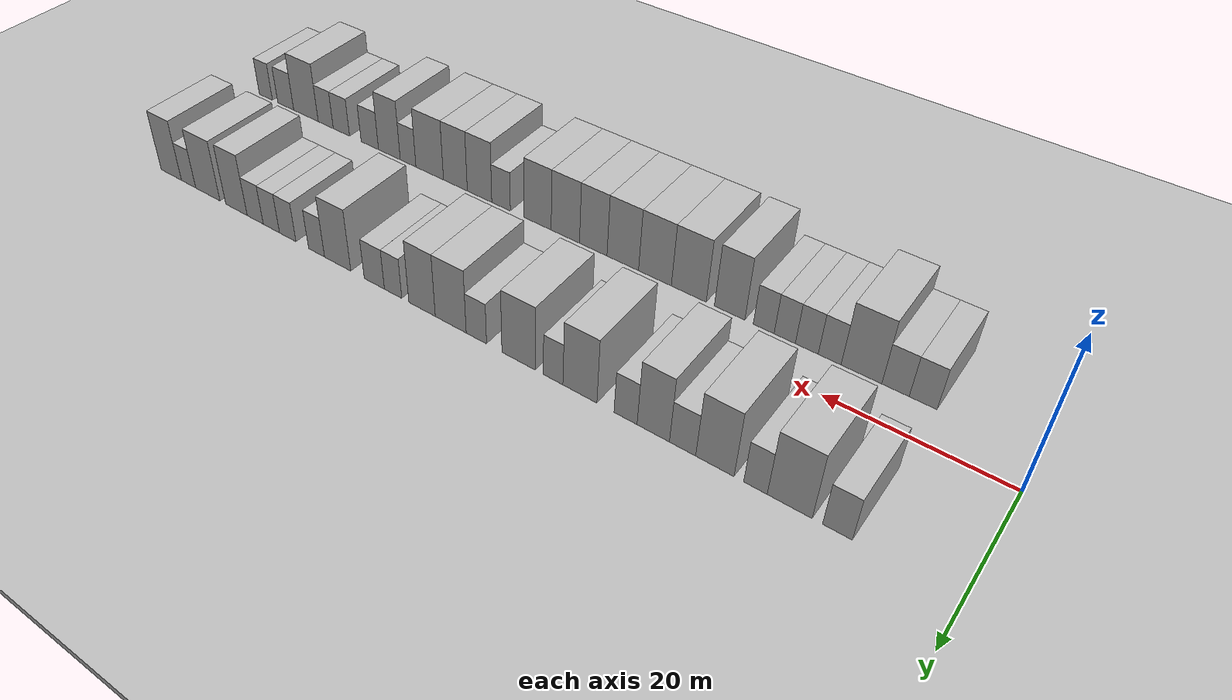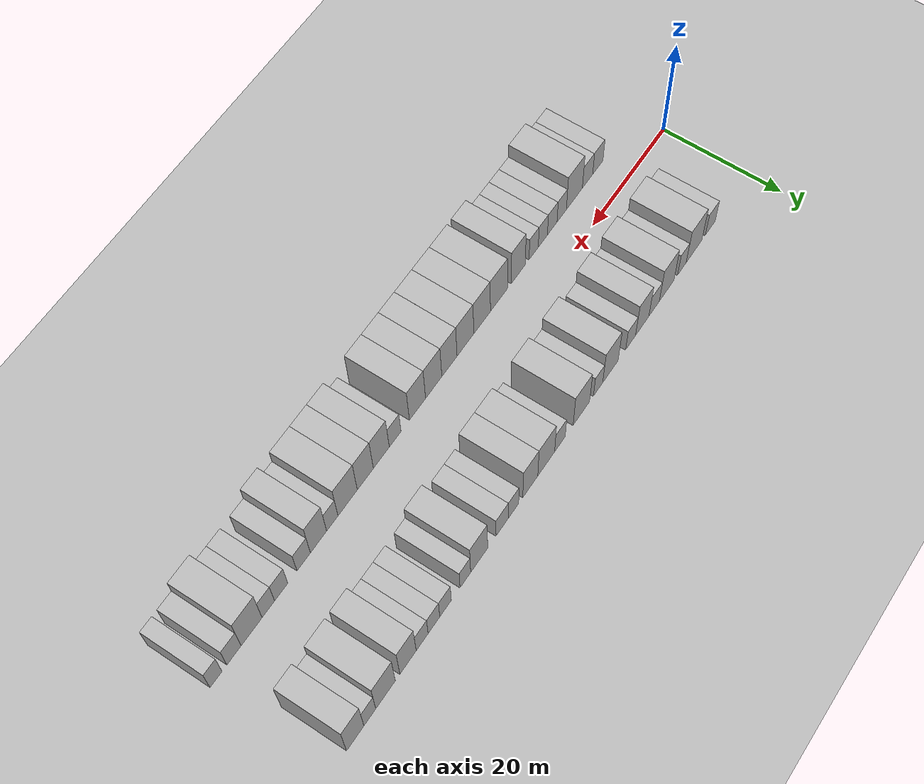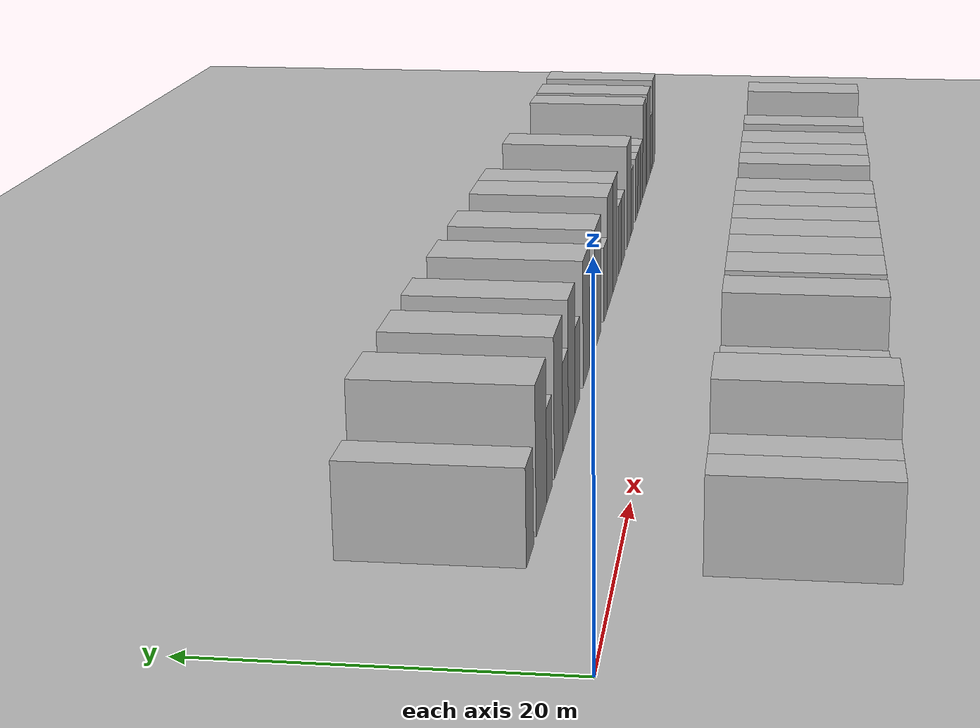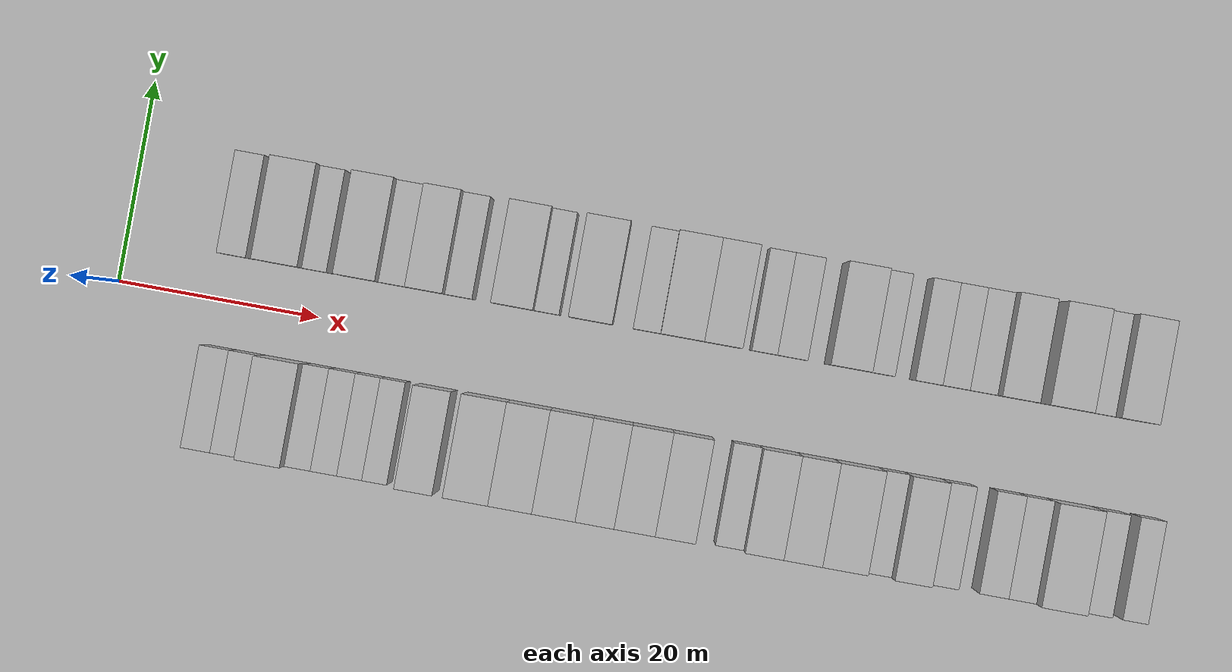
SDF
<sdf version="1.6">
 <world name="default">
  <include><name>ground_plane_1</name><uri>model://HANNAS_ground_plane</uri></include>
  <include>
   <name>ground_plane_2</name>
   <uri>model://HANNAS_ground_plane</uri>
   <pose>100 0 0  0 0 0</pose>
  </include>
  <model name="building_1">
   <static>1</static>
   <pose>11.4243 9.5000 0 0.000000 0.000000 1.570796</pose>
   <link name="link">
    <pose>0 0 3.00 0 0 0</pose>
    <collision name="collision"><geometry><box><size>10.0000 2.8487 6.0000</size></box></geometry></collision>
    <visual name="visual">
     <cast_shadows>0</cast_shadows>
     <geometry><box><size>10.0000 2.8487 6.0000</size></box></geometry>
     <material>
      <script>
       <uri>model://HANNAS_wall/materials/scripts</uri>
       <uri>model://HANNAS_wall/materials/textures</uri>
       <name>vrc/HANNAS_wall</name>
      </script>
     </material>
    </visual>
   </link>
  </model>
  <model name="building_2">
   <static>1</static>
   <pose>16.0821 9.5000 0 0.000000 0.000000 1.570796</pose>
   <link name="link">
    <pose>0 0 4.50 0 0 0</pose>
    <collision name="collision"><geometry><box><size>10.0000 4.4667 9.0000</size></box></geometry></collision>
    <visual name="visual">
     <cast_shadows>0</cast_shadows>
     <geometry><box><size>10.0000 4.4667 9.0000</size></box></geometry>
     <material>
      <script>
       <uri>model://HANNAS_wall/materials/scripts</uri>
       <uri>model://HANNAS_wall/materials/textures</uri>
       <name>vrc/HANNAS_wall</name>
      </script>
     </material>
    </visual>
   </link>
  </model>
  <model name="building_3">
   <static>1</static>
   <pose>19.5172 9.5000 0 0.000000 0.000000 1.570796</pose>
   <link name="link">
    <pose>0 0 3.00 0 0 0</pose>
    <collision name="collision"><geometry><box><size>10.0000 2.4036 6.0000</size></box></geometry></collision>
    <visual name="visual">
     <cast_shadows>0</cast_shadows>
     <geometry><box><size>10.0000 2.4036 6.0000</size></box></geometry>
     <material>
      <script>
       <uri>model://HANNAS_wall/materials/scripts</uri>
       <uri>model://HANNAS_wall/materials/textures</uri>
       <name>vrc/HANNAS_wall</name>
      </script>
     </material>
    </visual>
   </link>
  </model>
  <model name="building_4">
   <static>1</static>
   <pose>23.7486 9.5000 0 0.000000 0.000000 1.570796</pose>
   <link name="link">
    <pose>0 0 4.50 0 0 0</pose>
    <collision name="collision"><geometry><box><size>10.0000 4.0592 9.0000</size></box></geometry></collision>
    <visual name="visual">
     <cast_shadows>0</cast_shadows>
     <geometry><box><size>10.0000 4.0592 9.0000</size></box></geometry>
     <material>
      <script>
       <uri>model://HANNAS_wall/materials/scripts</uri>
       <uri>model://HANNAS_wall/materials/textures</uri>
       <name>vrc/HANNAS_wall</name>
      </script>
     </material>
    </visual>
   </link>
  </model>
  <model name="building_5">
   <static>1</static>
   <pose>27.2113 9.5000 0 0.000000 0.000000 1.570796</pose>
   <link name="link">
    <pose>0 0 3.00 0 0 0</pose>
    <collision name="collision"><geometry><box><size>10.0000 2.8662 6.0000</size></box></geometry></collision>
    <visual name="visual">
     <cast_shadows>0</cast_shadows>
     <geometry><box><size>10.0000 2.8662 6.0000</size></box></geometry>
     <material>
      <script>
       <uri>model://HANNAS_wall/materials/scripts</uri>
       <uri>model://HANNAS_wall/materials/textures</uri>
       <name>vrc/HANNAS_wall</name>
      </script>
     </material>
    </visual>
   </link>
  </model>
  <model name="building_6">
   <static>1</static>
   <pose>30.4555 9.5000 0 0.000000 0.000000 1.570796</pose>
   <link name="link">
    <pose>0 0 4.50 0 0 0</pose>
    <collision name="collision"><geometry><box><size>10.0000 3.6220 9.0000</size></box></geometry></collision>
    <visual name="visual">
     <cast_shadows>0</cast_shadows>
     <geometry><box><size>10.0000 3.6220 9.0000</size></box></geometry>
     <material>
      <script>
       <uri>model://HANNAS_wall/materials/scripts</uri>
       <uri>model://HANNAS_wall/materials/textures</uri>
       <name>vrc/HANNAS_wall</name>
      </script>
     </material>
    </visual>
   </link>
  </model>
  <model name="building_7">
   <static>1</static>
   <pose>33.5878 9.5000 0 0.000000 0.000000 1.570796</pose>
   <link name="link">
    <pose>0 0 3.00 0 0 0</pose>
    <collision name="collision"><geometry><box><size>10.0000 2.6427 6.0000</size></box></geometry></collision>
    <visual name="visual">
     <cast_shadows>0</cast_shadows>
     <geometry><box><size>10.0000 2.6427 6.0000</size></box></geometry>
     <material>
      <script>
       <uri>model://HANNAS_wall/materials/scripts</uri>
       <uri>model://HANNAS_wall/materials/textures</uri>
       <name>vrc/HANNAS_wall</name>
      </script>
     </material>
    </visual>
   </link>
  </model>
  <model name="building_8">
   <static>1</static>
   <pose>38.9452 9.5000 0 0.000000 0.000000 1.570796</pose>
   <link name="link">
    <pose>0 0 4.50 0 0 0</pose>
    <collision name="collision"><geometry><box><size>10.0000 4.0722 9.0000</size></box></geometry></collision>
    <visual name="visual">
     <cast_shadows>0</cast_shadows>
     <geometry><box><size>10.0000 4.0722 9.0000</size></box></geometry>
     <material>
      <script>
       <uri>model://HANNAS_wall/materials/scripts</uri>
       <uri>model://HANNAS_wall/materials/textures</uri>
       <name>vrc/HANNAS_wall</name>
      </script>
     </material>
    </visual>
   </link>
  </model>
  <model name="building_9">
   <static>1</static>
   <pose>42.1849 9.5000 0 0.000000 0.000000 1.570796</pose>
   <link name="link">
    <pose>0 0 3.00 0 0 0</pose>
    <collision name="collision"><geometry><box><size>10.0000 2.4071 6.0000</size></box></geometry></collision>
    <visual name="visual">
     <cast_shadows>0</cast_shadows>
     <geometry><box><size>10.0000 2.4071 6.0000</size></box></geometry>
     <material>
      <script>
       <uri>model://HANNAS_wall/materials/scripts</uri>
       <uri>model://HANNAS_wall/materials/textures</uri>
       <name>vrc/HANNAS_wall</name>
      </script>
     </material>
    </visual>
   </link>
  </model>
  <model name="building_10">
   <static>1</static>
   <pose>46.5033 9.5000 0 0.000000 0.000000 1.570796</pose>
   <link name="link">
    <pose>0 0 4.50 0 0 0</pose>
    <collision name="collision"><geometry><box><size>10.0000 4.2298 9.0000</size></box></geometry></collision>
    <visual name="visual">
     <cast_shadows>0</cast_shadows>
     <geometry><box><size>10.0000 4.2298 9.0000</size></box></geometry>
     <material>
      <script>
       <uri>model://HANNAS_wall/materials/scripts</uri>
       <uri>model://HANNAS_wall/materials/textures</uri>
       <name>vrc/HANNAS_wall</name>
      </script>
     </material>
    </visual>
   </link>
  </model>
  <model name="building_11">
   <static>1</static>
   <pose>51.9629 9.5000 0 0.000000 0.000000 1.570796</pose>
   <link name="link">
    <pose>0 0 3.00 0 0 0</pose>
    <collision name="collision"><geometry><box><size>10.0000 2.6895 6.0000</size></box></geometry></collision>
    <visual name="visual">
     <cast_shadows>0</cast_shadows>
     <geometry><box><size>10.0000 2.6895 6.0000</size></box></geometry>
     <material>
      <script>
       <uri>model://HANNAS_wall/materials/scripts</uri>
       <uri>model://HANNAS_wall/materials/textures</uri>
       <name>vrc/HANNAS_wall</name>
      </script>
     </material>
    </visual>
   </link>
  </model>
  <model name="building_12">
   <static>1</static>
   <pose>55.4036 9.5000 0 0.000000 0.000000 1.570796</pose>
   <link name="link">
    <pose>0 0 4.50 0 0 0</pose>
    <collision name="collision"><geometry><box><size>10.0000 4.1919 9.0000</size></box></geometry></collision>
    <visual name="visual">
     <cast_shadows>0</cast_shadows>
     <geometry><box><size>10.0000 4.1919 9.0000</size></box></geometry>
     <material>
      <script>
       <uri>model://HANNAS_wall/materials/scripts</uri>
       <uri>model://HANNAS_wall/materials/textures</uri>
       <name>vrc/HANNAS_wall</name>
      </script>
     </material>
    </visual>
   </link>
  </model>
  <model name="building_13">
   <static>1</static>
   <pose>59.3472 9.5000 0 0.000000 0.000000 1.570796</pose>
   <link name="link">
    <pose>0 0 4.50 0 0 0</pose>
    <collision name="collision"><geometry><box><size>10.0000 3.6953 9.0000</size></box></geometry></collision>
    <visual name="visual">
     <cast_shadows>0</cast_shadows>
     <geometry><box><size>10.0000 3.6953 9.0000</size></box></geometry>
     <material>
      <script>
       <uri>model://HANNAS_wall/materials/scripts</uri>
       <uri>model://HANNAS_wall/materials/textures</uri>
       <name>vrc/HANNAS_wall</name>
      </script>
     </material>
    </visual>
   </link>
  </model>
  <model name="building_14">
   <static>1</static>
   <pose>63.4480 9.5000 0 0.000000 0.000000 1.570796</pose>
   <link name="link">
    <pose>0 0 3.00 0 0 0</pose>
    <collision name="collision"><geometry><box><size>10.0000 2.5064 6.0000</size></box></geometry></collision>
    <visual name="visual">
     <cast_shadows>0</cast_shadows>
     <geometry><box><size>10.0000 2.5064 6.0000</size></box></geometry>
     <material>
      <script>
       <uri>model://HANNAS_wall/materials/scripts</uri>
       <uri>model://HANNAS_wall/materials/textures</uri>
       <name>vrc/HANNAS_wall</name>
      </script>
     </material>
    </visual>
   </link>
  </model>
  <model name="building_15">
   <static>1</static>
   <pose>66.1786 9.5000 0 0.000000 0.000000 1.570796</pose>
   <link name="link">
    <pose>0 0 3.00 0 0 0</pose>
    <collision name="collision"><geometry><box><size>10.0000 2.9547 6.0000</size></box></geometry></collision>
    <visual name="visual">
     <cast_shadows>0</cast_shadows>
     <geometry><box><size>10.0000 2.9547 6.0000</size></box></geometry>
     <material>
      <script>
       <uri>model://HANNAS_wall/materials/scripts</uri>
       <uri>model://HANNAS_wall/materials/textures</uri>
       <name>vrc/HANNAS_wall</name>
      </script>
     </material>
    </visual>
   </link>
  </model>
  <model name="building_16">
   <static>1</static>
   <pose>71.6611 9.5000 0 0.000000 0.000000 1.570796</pose>
   <link name="link">
    <pose>0 0 4.50 0 0 0</pose>
    <collision name="collision"><geometry><box><size>10.0000 4.0103 9.0000</size></box></geometry></collision>
    <visual name="visual">
     <cast_shadows>0</cast_shadows>
     <geometry><box><size>10.0000 4.0103 9.0000</size></box></geometry>
     <material>
      <script>
       <uri>model://HANNAS_wall/materials/scripts</uri>
       <uri>model://HANNAS_wall/materials/textures</uri>
       <name>vrc/HANNAS_wall</name>
      </script>
     </material>
    </visual>
   </link>
  </model>
  <model name="building_17">
   <static>1</static>
   <pose>74.9075 9.5000 0 0.000000 0.000000 1.570796</pose>
   <link name="link">
    <pose>0 0 3.00 0 0 0</pose>
    <collision name="collision"><geometry><box><size>10.0000 2.4826 6.0000</size></box></geometry></collision>
    <visual name="visual">
     <cast_shadows>0</cast_shadows>
     <geometry><box><size>10.0000 2.4826 6.0000</size></box></geometry>
     <material>
      <script>
       <uri>model://HANNAS_wall/materials/scripts</uri>
       <uri>model://HANNAS_wall/materials/textures</uri>
       <name>vrc/HANNAS_wall</name>
      </script>
     </material>
    </visual>
   </link>
  </model>
  <model name="building_18">
   <static>1</static>
   <pose>79.4755 9.5000 0 0.000000 0.000000 1.570796</pose>
   <link name="link">
    <pose>0 0 3.00 0 0 0</pose>
    <collision name="collision"><geometry><box><size>10.0000 2.6533 6.0000</size></box></geometry></collision>
    <visual name="visual">
     <cast_shadows>0</cast_shadows>
     <geometry><box><size>10.0000 2.6533 6.0000</size></box></geometry>
     <material>
      <script>
       <uri>model://HANNAS_wall/materials/scripts</uri>
       <uri>model://HANNAS_wall/materials/textures</uri>
       <name>vrc/HANNAS_wall</name>
      </script>
     </material>
    </visual>
   </link>
  </model>
  <model name="building_19">
   <static>1</static>
   <pose>82.1273 9.5000 0 0.000000 0.000000 1.570796</pose>
   <link name="link">
    <pose>0 0 3.00 0 0 0</pose>
    <collision name="collision"><geometry><box><size>10.0000 2.6502 6.0000</size></box></geometry></collision>
    <visual name="visual">
     <cast_shadows>0</cast_shadows>
     <geometry><box><size>10.0000 2.6502 6.0000</size></box></geometry>
     <material>
      <script>
       <uri>model://HANNAS_wall/materials/scripts</uri>
       <uri>model://HANNAS_wall/materials/textures</uri>
       <name>vrc/HANNAS_wall</name>
      </script>
     </material>
    </visual>
   </link>
  </model>
  <model name="building_20">
   <static>1</static>
   <pose>84.7963 9.5000 0 0.000000 0.000000 1.570796</pose>
   <link name="link">
    <pose>0 0 3.00 0 0 0</pose>
    <collision name="collision"><geometry><box><size>10.0000 2.6878 6.0000</size></box></geometry></collision>
    <visual name="visual">
     <cast_shadows>0</cast_shadows>
     <geometry><box><size>10.0000 2.6878 6.0000</size></box></geometry>
     <material>
      <script>
       <uri>model://HANNAS_wall/materials/scripts</uri>
       <uri>model://HANNAS_wall/materials/textures</uri>
       <name>vrc/HANNAS_wall</name>
      </script>
     </material>
    </visual>
   </link>
  </model>
  <model name="building_21">
   <static>1</static>
   <pose>87.9609 9.5000 0 0.000000 0.000000 1.570796</pose>
   <link name="link">
    <pose>0 0 4.50 0 0 0</pose>
    <collision name="collision"><geometry><box><size>10.0000 3.6413 9.0000</size></box></geometry></collision>
    <visual name="visual">
     <cast_shadows>0</cast_shadows>
     <geometry><box><size>10.0000 3.6413 9.0000</size></box></geometry>
     <material>
      <script>
       <uri>model://HANNAS_wall/materials/scripts</uri>
       <uri>model://HANNAS_wall/materials/textures</uri>
       <name>vrc/HANNAS_wall</name>
      </script>
     </material>
    </visual>
   </link>
  </model>
  <model name="building_22">
   <static>1</static>
   <pose>92.9177 9.5000 0 0.000000 0.000000 1.570796</pose>
   <link name="link">
    <pose>0 0 4.50 0 0 0</pose>
    <collision name="collision"><geometry><box><size>10.0000 4.2722 9.0000</size></box></geometry></collision>
    <visual name="visual">
     <cast_shadows>0</cast_shadows>
     <geometry><box><size>10.0000 4.2722 9.0000</size></box></geometry>
     <material>
      <script>
       <uri>model://HANNAS_wall/materials/scripts</uri>
       <uri>model://HANNAS_wall/materials/textures</uri>
       <name>vrc/HANNAS_wall</name>
      </script>
     </material>
    </visual>
   </link>
  </model>
  <model name="building_23">
   <static>1</static>
   <pose>96.3327 9.5000 0 0.000000 0.000000 1.570796</pose>
   <link name="link">
    <pose>0 0 3.00 0 0 0</pose>
    <collision name="collision"><geometry><box><size>10.0000 2.5578 6.0000</size></box></geometry></collision>
    <visual name="visual">
     <cast_shadows>0</cast_shadows>
     <geometry><box><size>10.0000 2.5578 6.0000</size></box></geometry>
     <material>
      <script>
       <uri>model://HANNAS_wall/materials/scripts</uri>
       <uri>model://HANNAS_wall/materials/textures</uri>
       <name>vrc/HANNAS_wall</name>
      </script>
     </material>
    </visual>
   </link>
  </model>
  <model name="building_24">
   <static>1</static>
   <pose>99.4689 9.5000 0 0.000000 0.000000 1.570796</pose>
   <link name="link">
    <pose>0 0 4.50 0 0 0</pose>
    <collision name="collision"><geometry><box><size>10.0000 3.7147 9.0000</size></box></geometry></collision>
    <visual name="visual">
     <cast_shadows>0</cast_shadows>
     <geometry><box><size>10.0000 3.7147 9.0000</size></box></geometry>
     <material>
      <script>
       <uri>model://HANNAS_wall/materials/scripts</uri>
       <uri>model://HANNAS_wall/materials/textures</uri>
       <name>vrc/HANNAS_wall</name>
      </script>
     </material>
    </visual>
   </link>
  </model>
  <model name="building_50">
   <static>1</static>
   <pose>11.4332 -9.5000 0 0.000000 0.000000 1.570796</pose>
   <link name="link">
    <pose>0 0 3.00 0 0 0</pose>
    <collision name="collision"><geometry><box><size>10.0000 2.8665 6.0000</size></box></geometry></collision>
    <visual name="visual">
     <cast_shadows>0</cast_shadows>
     <geometry><box><size>10.0000 2.8665 6.0000</size></box></geometry>
     <material>
      <script>
       <uri>model://HANNAS_wall/materials/scripts</uri>
       <uri>model://HANNAS_wall/materials/textures</uri>
       <name>vrc/HANNAS_wall</name>
      </script>
     </material>
    </visual>
   </link>
  </model>
  <model name="building_51">
   <static>1</static>
   <pose>14.2989 -9.5000 0 0.000000 0.000000 1.570796</pose>
   <link name="link">
    <pose>0 0 3.00 0 0 0</pose>
    <collision name="collision"><geometry><box><size>10.0000 2.8649 6.0000</size></box></geometry></collision>
    <visual name="visual">
     <cast_shadows>0</cast_shadows>
     <geometry><box><size>10.0000 2.8649 6.0000</size></box></geometry>
     <material>
      <script>
       <uri>model://HANNAS_wall/materials/scripts</uri>
       <uri>model://HANNAS_wall/materials/textures</uri>
       <name>vrc/HANNAS_wall</name>
      </script>
     </material>
    </visual>
   </link>
  </model>
  <model name="building_52">
   <static>1</static>
   <pose>17.9222 -9.5000 0 0.000000 0.000000 1.570796</pose>
   <link name="link">
    <pose>0 0 4.50 0 0 0</pose>
    <collision name="collision"><geometry><box><size>10.0000 4.3817 9.0000</size></box></geometry></collision>
    <visual name="visual">
     <cast_shadows>0</cast_shadows>
     <geometry><box><size>10.0000 4.3817 9.0000</size></box></geometry>
     <material>
      <script>
       <uri>model://HANNAS_wall/materials/scripts</uri>
       <uri>model://HANNAS_wall/materials/textures</uri>
       <name>vrc/HANNAS_wall</name>
      </script>
     </material>
    </visual>
   </link>
  </model>
  <model name="building_53">
   <static>1</static>
   <pose>21.3764 -9.5000 0 0.000000 0.000000 1.570796</pose>
   <link name="link">
    <pose>0 0 3.00 0 0 0</pose>
    <collision name="collision"><geometry><box><size>10.0000 2.5267 6.0000</size></box></geometry></collision>
    <visual name="visual">
     <cast_shadows>0</cast_shadows>
     <geometry><box><size>10.0000 2.5267 6.0000</size></box></geometry>
     <material>
      <script>
       <uri>model://HANNAS_wall/materials/scripts</uri>
       <uri>model://HANNAS_wall/materials/textures</uri>
       <name>vrc/HANNAS_wall</name>
      </script>
     </material>
    </visual>
   </link>
  </model>
  <model name="building_54">
   <static>1</static>
   <pose>23.9281 -9.5000 0 0.000000 0.000000 1.570796</pose>
   <link name="link">
    <pose>0 0 3.00 0 0 0</pose>
    <collision name="collision"><geometry><box><size>10.0000 2.5768 6.0000</size></box></geometry></collision>
    <visual name="visual">
     <cast_shadows>0</cast_shadows>
     <geometry><box><size>10.0000 2.5768 6.0000</size></box></geometry>
     <material>
      <script>
       <uri>model://HANNAS_wall/materials/scripts</uri>
       <uri>model://HANNAS_wall/materials/textures</uri>
       <name>vrc/HANNAS_wall</name>
      </script>
     </material>
    </visual>
   </link>
  </model>
  <model name="building_55">
   <static>1</static>
   <pose>26.4350 -9.5000 0 0.000000 0.000000 1.570796</pose>
   <link name="link">
    <pose>0 0 3.00 0 0 0</pose>
    <collision name="collision"><geometry><box><size>10.0000 2.4369 6.0000</size></box></geometry></collision>
    <visual name="visual">
     <cast_shadows>0</cast_shadows>
     <geometry><box><size>10.0000 2.4369 6.0000</size></box></geometry>
     <material>
      <script>
       <uri>model://HANNAS_wall/materials/scripts</uri>
       <uri>model://HANNAS_wall/materials/textures</uri>
       <name>vrc/HANNAS_wall</name>
      </script>
     </material>
    </visual>
   </link>
  </model>
  <model name="building_56">
   <static>1</static>
   <pose>28.8714 -9.5000 0 0.000000 0.000000 1.570796</pose>
   <link name="link">
    <pose>0 0 3.00 0 0 0</pose>
    <collision name="collision"><geometry><box><size>10.0000 2.4360 6.0000</size></box></geometry></collision>
    <visual name="visual">
     <cast_shadows>0</cast_shadows>
     <geometry><box><size>10.0000 2.4360 6.0000</size></box></geometry>
     <material>
      <script>
       <uri>model://HANNAS_wall/materials/scripts</uri>
       <uri>model://HANNAS_wall/materials/textures</uri>
       <name>vrc/HANNAS_wall</name>
      </script>
     </material>
    </visual>
   </link>
  </model>
  <model name="building_57">
   <static>1</static>
   <pose>32.9219 -9.5000 0 0.000000 0.000000 1.570796</pose>
   <link name="link">
    <pose>0 0 4.50 0 0 0</pose>
    <collision name="collision"><geometry><box><size>10.0000 3.6650 9.0000</size></box></geometry></collision>
    <visual name="visual">
     <cast_shadows>0</cast_shadows>
     <geometry><box><size>10.0000 3.6650 9.0000</size></box></geometry>
     <material>
      <script>
       <uri>model://HANNAS_wall/materials/scripts</uri>
       <uri>model://HANNAS_wall/materials/textures</uri>
       <name>vrc/HANNAS_wall</name>
      </script>
     </material>
    </visual>
   </link>
  </model>
  <model name="building_58">
   <static>1</static>
   <pose>37.9331 -9.5000 0 0.000000 0.000000 1.570796</pose>
   <link name="link">
    <pose>0 0 4.50 0 0 0</pose>
    <collision name="collision"><geometry><box><size>10.0000 4.3574 9.0000</size></box></geometry></collision>
    <visual name="visual">
     <cast_shadows>0</cast_shadows>
     <geometry><box><size>10.0000 4.3574 9.0000</size></box></geometry>
     <material>
      <script>
       <uri>model://HANNAS_wall/materials/scripts</uri>
       <uri>model://HANNAS_wall/materials/textures</uri>
       <name>vrc/HANNAS_wall</name>
      </script>
     </material>
    </visual>
   </link>
  </model>
  <model name="building_59">
   <static>1</static>
   <pose>42.2224 -9.5000 0 0.000000 0.000000 1.570796</pose>
   <link name="link">
    <pose>0 0 4.50 0 0 0</pose>
    <collision name="collision"><geometry><box><size>10.0000 4.2212 9.0000</size></box></geometry></collision>
    <visual name="visual">
     <cast_shadows>0</cast_shadows>
     <geometry><box><size>10.0000 4.2212 9.0000</size></box></geometry>
     <material>
      <script>
       <uri>model://HANNAS_wall/materials/scripts</uri>
       <uri>model://HANNAS_wall/materials/textures</uri>
       <name>vrc/HANNAS_wall</name>
      </script>
     </material>
    </visual>
   </link>
  </model>
  <model name="building_60">
   <static>1</static>
   <pose>46.4242 -9.5000 0 0.000000 0.000000 1.570796</pose>
   <link name="link">
    <pose>0 0 4.50 0 0 0</pose>
    <collision name="collision"><geometry><box><size>10.0000 4.1824 9.0000</size></box></geometry></collision>
    <visual name="visual">
     <cast_shadows>0</cast_shadows>
     <geometry><box><size>10.0000 4.1824 9.0000</size></box></geometry>
     <material>
      <script>
       <uri>model://HANNAS_wall/materials/scripts</uri>
       <uri>model://HANNAS_wall/materials/textures</uri>
       <name>vrc/HANNAS_wall</name>
      </script>
     </material>
    </visual>
   </link>
  </model>
  <model name="building_61">
   <static>1</static>
   <pose>50.3894 -9.5000 0 0.000000 0.000000 1.570796</pose>
   <link name="link">
    <pose>0 0 4.50 0 0 0</pose>
    <collision name="collision"><geometry><box><size>10.0000 3.7479 9.0000</size></box></geometry></collision>
    <visual name="visual">
     <cast_shadows>0</cast_shadows>
     <geometry><box><size>10.0000 3.7479 9.0000</size></box></geometry>
     <material>
      <script>
       <uri>model://HANNAS_wall/materials/scripts</uri>
       <uri>model://HANNAS_wall/materials/textures</uri>
       <name>vrc/HANNAS_wall</name>
      </script>
     </material>
    </visual>
   </link>
  </model>
  <model name="building_62">
   <static>1</static>
   <pose>54.2447 -9.5000 0 0.000000 0.000000 1.570796</pose>
   <link name="link">
    <pose>0 0 4.50 0 0 0</pose>
    <collision name="collision"><geometry><box><size>10.0000 3.9628 9.0000</size></box></geometry></collision>
    <visual name="visual">
     <cast_shadows>0</cast_shadows>
     <geometry><box><size>10.0000 3.9628 9.0000</size></box></geometry>
     <material>
      <script>
       <uri>model://HANNAS_wall/materials/scripts</uri>
       <uri>model://HANNAS_wall/materials/textures</uri>
       <name>vrc/HANNAS_wall</name>
      </script>
     </material>
    </visual>
   </link>
  </model>
  <model name="building_63">
   <static>1</static>
   <pose>58.1718 -9.5000 0 0.000000 0.000000 1.570796</pose>
   <link name="link">
    <pose>0 0 4.50 0 0 0</pose>
    <collision name="collision"><geometry><box><size>10.0000 3.8913 9.0000</size></box></geometry></collision>
    <visual name="visual">
     <cast_shadows>0</cast_shadows>
     <geometry><box><size>10.0000 3.8913 9.0000</size></box></geometry>
     <material>
      <script>
       <uri>model://HANNAS_wall/materials/scripts</uri>
       <uri>model://HANNAS_wall/materials/textures</uri>
       <name>vrc/HANNAS_wall</name>
      </script>
     </material>
    </visual>
   </link>
  </model>
  <model name="building_64">
   <static>1</static>
   <pose>63.4983 -9.5000 0 0.000000 0.000000 1.570796</pose>
   <link name="link">
    <pose>0 0 3.00 0 0 0</pose>
    <collision name="collision"><geometry><box><size>10.0000 2.7617 6.0000</size></box></geometry></collision>
    <visual name="visual">
     <cast_shadows>0</cast_shadows>
     <geometry><box><size>10.0000 2.7617 6.0000</size></box></geometry>
     <material>
      <script>
       <uri>model://HANNAS_wall/materials/scripts</uri>
       <uri>model://HANNAS_wall/materials/textures</uri>
       <name>vrc/HANNAS_wall</name>
      </script>
     </material>
    </visual>
   </link>
  </model>
  <model name="building_65">
   <static>1</static>
   <pose>66.7385 -9.5000 0 0.000000 0.000000 1.570796</pose>
   <link name="link">
    <pose>0 0 4.50 0 0 0</pose>
    <collision name="collision"><geometry><box><size>10.0000 3.7188 9.0000</size></box></geometry></collision>
    <visual name="visual">
     <cast_shadows>0</cast_shadows>
     <geometry><box><size>10.0000 3.7188 9.0000</size></box></geometry>
     <material>
      <script>
       <uri>model://HANNAS_wall/materials/scripts</uri>
       <uri>model://HANNAS_wall/materials/textures</uri>
       <name>vrc/HANNAS_wall</name>
      </script>
     </material>
    </visual>
   </link>
  </model>
  <model name="building_66">
   <static>1</static>
   <pose>70.4529 -9.5000 0 0.000000 0.000000 1.570796</pose>
   <link name="link">
    <pose>0 0 4.50 0 0 0</pose>
    <collision name="collision"><geometry><box><size>10.0000 3.7100 9.0000</size></box></geometry></collision>
    <visual name="visual">
     <cast_shadows>0</cast_shadows>
     <geometry><box><size>10.0000 3.7100 9.0000</size></box></geometry>
     <material>
      <script>
       <uri>model://HANNAS_wall/materials/scripts</uri>
       <uri>model://HANNAS_wall/materials/textures</uri>
       <name>vrc/HANNAS_wall</name>
      </script>
     </material>
    </visual>
   </link>
  </model>
  <model name="building_67">
   <static>1</static>
   <pose>74.5071 -9.5000 0 0.000000 0.000000 1.570796</pose>
   <link name="link">
    <pose>0 0 4.50 0 0 0</pose>
    <collision name="collision"><geometry><box><size>10.0000 4.3983 9.0000</size></box></geometry></collision>
    <visual name="visual">
     <cast_shadows>0</cast_shadows>
     <geometry><box><size>10.0000 4.3983 9.0000</size></box></geometry>
     <material>
      <script>
       <uri>model://HANNAS_wall/materials/scripts</uri>
       <uri>model://HANNAS_wall/materials/textures</uri>
       <name>vrc/HANNAS_wall</name>
      </script>
     </material>
    </visual>
   </link>
  </model>
  <model name="building_68">
   <static>1</static>
   <pose>77.9855 -9.5000 0 0.000000 0.000000 1.570796</pose>
   <link name="link">
    <pose>0 0 3.00 0 0 0</pose>
    <collision name="collision"><geometry><box><size>10.0000 2.5585 6.0000</size></box></geometry></collision>
    <visual name="visual">
     <cast_shadows>0</cast_shadows>
     <geometry><box><size>10.0000 2.5585 6.0000</size></box></geometry>
     <material>
      <script>
       <uri>model://HANNAS_wall/materials/scripts</uri>
       <uri>model://HANNAS_wall/materials/textures</uri>
       <name>vrc/HANNAS_wall</name>
      </script>
     </material>
    </visual>
   </link>
  </model>
  <model name="building_69">
   <static>1</static>
   <pose>81.0735 -9.5000 0 0.000000 0.000000 1.570796</pose>
   <link name="link">
    <pose>0 0 4.50 0 0 0</pose>
    <collision name="collision"><geometry><box><size>10.0000 3.6177 9.0000</size></box></geometry></collision>
    <visual name="visual">
     <cast_shadows>0</cast_shadows>
     <geometry><box><size>10.0000 3.6177 9.0000</size></box></geometry>
     <material>
      <script>
       <uri>model://HANNAS_wall/materials/scripts</uri>
       <uri>model://HANNAS_wall/materials/textures</uri>
       <name>vrc/HANNAS_wall</name>
      </script>
     </material>
    </visual>
   </link>
  </model>
  <model name="building_70">
   <static>1</static>
   <pose>84.3538 -9.5000 0 0.000000 0.000000 1.570796</pose>
   <link name="link">
    <pose>0 0 3.00 0 0 0</pose>
    <collision name="collision"><geometry><box><size>10.0000 2.9428 6.0000</size></box></geometry></collision>
    <visual name="visual">
     <cast_shadows>0</cast_shadows>
     <geometry><box><size>10.0000 2.9428 6.0000</size></box></geometry>
     <material>
      <script>
       <uri>model://HANNAS_wall/materials/scripts</uri>
       <uri>model://HANNAS_wall/materials/textures</uri>
       <name>vrc/HANNAS_wall</name>
      </script>
     </material>
    </visual>
   </link>
  </model>
  <model name="building_71">
   <static>1</static>
   <pose>89.2517 -9.5000 0 0.000000 0.000000 1.570796</pose>
   <link name="link">
    <pose>0 0 3.00 0 0 0</pose>
    <collision name="collision"><geometry><box><size>10.0000 2.8529 6.0000</size></box></geometry></collision>
    <visual name="visual">
     <cast_shadows>0</cast_shadows>
     <geometry><box><size>10.0000 2.8529 6.0000</size></box></geometry>
     <material>
      <script>
       <uri>model://HANNAS_wall/materials/scripts</uri>
       <uri>model://HANNAS_wall/materials/textures</uri>
       <name>vrc/HANNAS_wall</name>
      </script>
     </material>
    </visual>
   </link>
  </model>
  <model name="building_72">
   <static>1</static>
   <pose>92.0206 -9.5000 0 0.000000 0.000000 1.570796</pose>
   <link name="link">
    <pose>0 0 3.00 0 0 0</pose>
    <collision name="collision"><geometry><box><size>10.0000 2.6849 6.0000</size></box></geometry></collision>
    <visual name="visual">
     <cast_shadows>0</cast_shadows>
     <geometry><box><size>10.0000 2.6849 6.0000</size></box></geometry>
     <material>
      <script>
       <uri>model://HANNAS_wall/materials/scripts</uri>
       <uri>model://HANNAS_wall/materials/textures</uri>
       <name>vrc/HANNAS_wall</name>
      </script>
     </material>
    </visual>
   </link>
  </model>
  <model name="building_73">
   <static>1</static>
   <pose>95.5877 -9.5000 0 0.000000 0.000000 1.570796</pose>
   <link name="link">
    <pose>0 0 4.50 0 0 0</pose>
    <collision name="collision"><geometry><box><size>10.0000 4.4493 9.0000</size></box></geometry></collision>
    <visual name="visual">
     <cast_shadows>0</cast_shadows>
     <geometry><box><size>10.0000 4.4493 9.0000</size></box></geometry>
     <material>
      <script>
       <uri>model://HANNAS_wall/materials/scripts</uri>
       <uri>model://HANNAS_wall/materials/textures</uri>
       <name>vrc/HANNAS_wall</name>
      </script>
     </material>
    </visual>
   </link>
  </model>
  <model name="building_74">
   <static>1</static>
   <pose>99.2932 -9.5000 0 0.000000 0.000000 1.570796</pose>
   <link name="link">
    <pose>0 0 3.00 0 0 0</pose>
    <collision name="collision"><geometry><box><size>10.0000 2.9615 6.0000</size></box></geometry></collision>
    <visual name="visual">
     <cast_shadows>0</cast_shadows>
     <geometry><box><size>10.0000 2.9615 6.0000</size></box></geometry>
     <material>
      <script>
       <uri>model://HANNAS_wall/materials/scripts</uri>
       <uri>model://HANNAS_wall/materials/textures</uri>
       <name>vrc/HANNAS_wall</name>
      </script>
     </material>
    </visual>
   </link>
  </model>
  <model name="building_75">
   <static>1</static>
   <pose>103.0085 -9.5000 0 0.000000 0.000000 1.570796</pose>
   <link name="link">
    <pose>0 0 3.00 0 0 0</pose>
    <collision name="collision"><geometry><box><size>10.0000 2.4691 6.0000</size></box></geometry></collision>
    <visual name="visual">
     <cast_shadows>0</cast_shadows>
     <geometry><box><size>10.0000 2.4691 6.0000</size></box></geometry>
     <material>
      <script>
       <uri>model://HANNAS_wall/materials/scripts</uri>
       <uri>model://HANNAS_wall/materials/textures</uri>
       <name>vrc/HANNAS_wall</name>
      </script>
     </material>
    </visual>
   </link>
  </model>
 </world>
</sdf>
